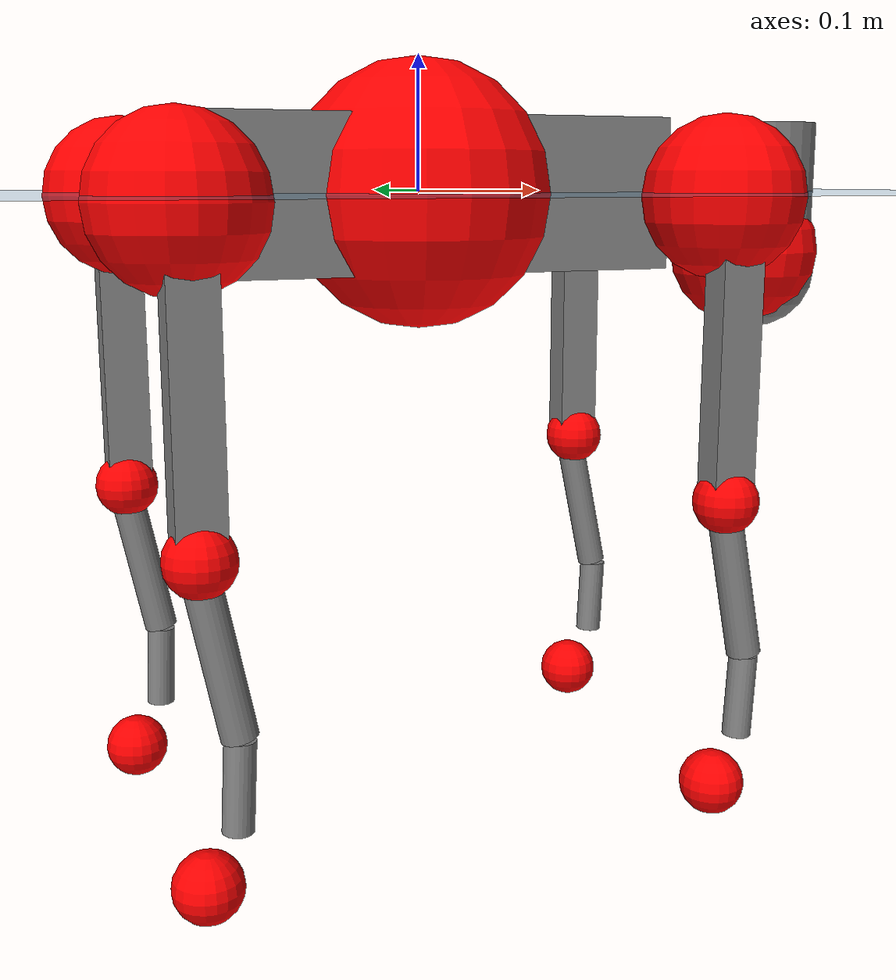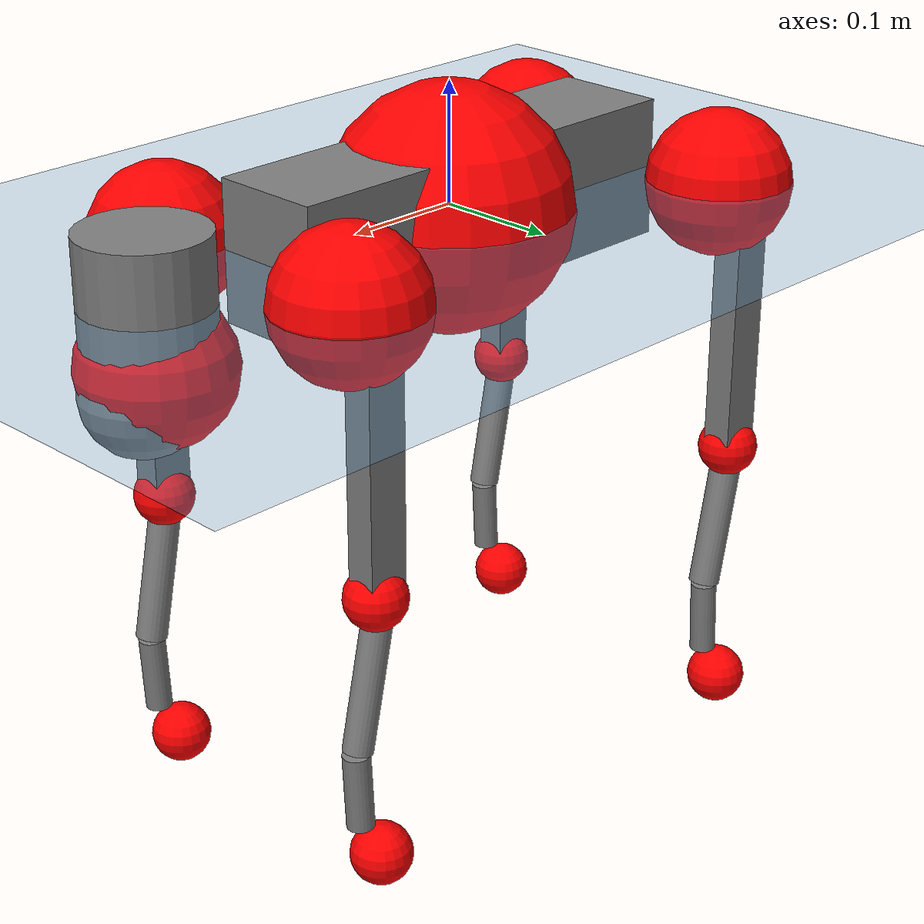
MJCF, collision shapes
<mujoco model="go2">
  <compiler angle="radian" assetdir="assets" balanceinertia="true" inertiafromgeom="false"/>

  <option timestep="0.005" density="1.2" viscosity="2e-05"/>

  <size nkey="1"/>

  <visual>
    <quality shadowsize="8192"/>
    <map shadowclip="0.5"/>
  </visual>

  <default>
    <default class="/">
      <geom contype="0" conaffinity="0" group="1" solref="-1000 -80"/>
      <site size="0.01 0.005 0.005" group="5"/>
      <general forcelimited="true" biastype="affine" gainprm="20" biasprm="0 -20 -0.5"/>
      <default class="go2">
        <joint armature="0.01" damping="0.01" frictionloss="0.2"/>
        <geom condim="1" margin="0.001"/>
        <default class="visual">
          <geom type="mesh" group="2"/>
        </default>
        <default class="collision">
          <geom group="3"/>
          <default class="foot">
            <geom size="0.022 0 0" condim="6" priority="1" friction="0.8 0.02 0.01" solimp="0.015 1 0.022"/>
          </default>
        </default>
        <default class="reward_collision_sphere">
          <geom group="5" rgba="1 0 0 1"/>
        </default>
      </default>
    </default>
  </default>

  <asset>
    <texture type="skybox" colorspace="auto" name="//unnamed_texture_0" builtin="gradient" rgb1="0.95 0.95 0.95" rgb2="0.95 0.95 0.95" width="100" height="600"/>
    <texture type="2d" colorspace="auto" name="texplane" builtin="checker" rgb1="0.345 0.575 0.748" rgb2="0.345 0.575 0.748" markrgb="1 1 1" width="512" height="512"/>
    <material name="MatPlane" class="/" texture="texplane" texuniform="true" texrepeat="2 2" specular="0.9"/>
    <material name="metal" class="/" rgba="0.9 0.95 0.95 1"/>
    <material name="black" class="/" rgba="0 0 0 1"/>
    <material name="white" class="/"/>
    <material name="gray" class="/" rgba="0.671705 0.692426 0.77427 1"/>
    <mesh name="base_0" class="/" file="base_0.obj"/>
    <mesh name="base_1" class="/" file="base_1.obj"/>
    <mesh name="base_2" class="/" file="base_2.obj"/>
    <mesh name="base_3" class="/" file="base_3.obj"/>
    <mesh name="base_4" class="/" file="base_4.obj"/>
    <mesh name="hip_0" class="/" file="hip_0.obj"/>
    <mesh name="hip_1" class="/" file="hip_1.obj"/>
    <mesh name="thigh_0" class="/" file="thigh_0.obj"/>
    <mesh name="thigh_1" class="/" file="thigh_1.obj"/>
    <mesh name="thigh_mirror_0" class="/" file="thigh_mirror_0.obj"/>
    <mesh name="thigh_mirror_1" class="/" file="thigh_mirror_1.obj"/>
    <mesh name="calf_0" class="/" file="calf_0.obj"/>
    <mesh name="calf_1" class="/" file="calf_1.obj"/>
    <mesh name="calf_mirror_0" class="/" file="calf_mirror_0.obj"/>
    <mesh name="calf_mirror_1" class="/" file="calf_mirror_1.obj"/>
    <mesh name="foot" class="/" file="foot.obj"/>
  </asset>

  <worldbody>
    <geom name="floor" class="/" size="100 100 0.125" type="plane" group="0" material="MatPlane"/>
    <light name="toplight_shadow" class="/" pos="0 0 5" dir="0.0990148 0.0990148 -0.990148" type="directional" ambient="0.04 0.04 0.04" diffuse="0.55 0.55 0.55" specular="0.12 0.12 0.12"/>
    <light name="toplight_fill" class="/" pos="0 0 5" dir="0.0990148 0.0990148 -0.990148" type="directional" castshadow="false" ambient="0.04 0.04 0.04" diffuse="0.3 0.3 0.3" specular="0.08 0.08 0.08"/>
    <body name="trunk" childclass="go2" pos="-0.000456574 -0.000489599 -0.00222822" quat="1 3.40345e-05 1.05754e-05 -4.13493e-05">
      <inertial pos="0.0203742 -0.000927862 -0.00304766" quat="-0.00362434 0.716563 -0.0129641 0.697392" mass="7.31753" diaginertia="0.144743 0.0621987 0.0350095"/>
      <joint name="//unnamed_joint_0" type="free" armature="0" damping="0" frictionloss="0"/>
      <geom name="//unnamed_geom_1" class="visual" material="black" mesh="base_0"/>
      <geom name="//unnamed_geom_2" class="visual" material="black" mesh="base_1"/>
      <geom name="//unnamed_geom_3" class="visual" material="black" mesh="base_2"/>
      <geom name="//unnamed_geom_4" class="visual" material="white" mesh="base_3"/>
      <geom name="//unnamed_geom_5" class="visual" material="gray" mesh="base_4"/>
      <geom name="trunk_1" class="collision" size="0.190229 0.0472792 0.0576453" type="box"/>
      <geom name="trunk_2" class="collision" size="0.050566 0.0455094" pos="0.299913 0 0.0107102" type="cylinder"/>
      <geom name="trunk_3" class="collision" size="0.0475321" pos="0.308332 0 -0.064261"/>
      <geom name="//unnamed_geom_9" class="reward_collision_sphere" size="0.101132"/>
      <geom name="//unnamed_geom_10" class="reward_collision_sphere" size="0.0606792" pos="0.294652 0 -0.0481957"/>
      <site name="imu" pos="-0.0234759 -0.00169162 0.0494508" size="0.0101132"/>
      <camera name="track" pos="0 -1.82123 0" quat="0.707107 0.707107 0 0" mode="trackcom"/>
      <camera name="ego_camera" pos="0.328326 0 0.0481957" quat="-0.5 -0.5 0.5 0.5"/>
      <body name="FL_hip" pos="0.203526 0.04108 0.00296685" quat="0.999999 -0.000746347 -6.59965e-05 0.00111207">
        <inertial pos="-0.00503424 -0.000535791 0.000496216" quat="0.489149 0.507848 0.500748 0.502071" mass="0.705813" diaginertia="0.00115211 0.00038038 0.000705163"/>
        <joint name="FL_hip_joint" pos="0 0 0" axis="0.999978 0.00580546 -0.00312532" range="-1.03564 1.1044" armature="0.010102" damping="0.018398" frictionloss="0.192682"/>
        <geom name="//unnamed_geom_11" class="visual" material="metal" mesh="hip_0"/>
        <geom name="//unnamed_geom_12" class="visual" material="gray" mesh="hip_1"/>
        <geom name="//unnamed_geom_13" class="collision" size="0.0465207 0.0202264" pos="0 0.0728494 0" quat="0.707107 0.707107 0 0" type="cylinder"/>
        <geom name="//unnamed_geom_14" class="reward_collision_sphere" size="0.0606792" pos="0 0.0637432 0"/>
        <body name="FL_thigh" pos="-0.00126799 0.0858794 0.00262728" quat="1 0.000227261 -4.70843e-05 -0.000485359">
          <inertial pos="-0.00132353 -0.0206809 -0.0344558" quat="0.828323 0.0858792 -0.0101609 0.553537" mass="1.21783" diaginertia="0.00755927 0.00361842 0.00121235"/>
          <joint name="FL_thigh_joint" pos="0 0 0" axis="0.00866661 0.999959 0.00274947" stiffness="0.00770706" range="-1.60512 3.52806" armature="0.0104741" damping="0" frictionloss="0.194027"/>
          <geom name="//unnamed_geom_15" class="visual" material="metal" mesh="thigh_0"/>
          <geom name="//unnamed_geom_16" class="visual" material="gray" mesh="thigh_1"/>
          <geom name="//unnamed_geom_17" class="collision" size="0.107706 0.0123887 0.0171924" pos="0 0 -0.114063" quat="0.707107 0 0.707107 0" type="box"/>
          <body name="FL_calf" pos="0.00147793 -0.000721589 -0.227648" quat="1 0.000272097 -0.000655063 0.000464704">
            <inertial pos="0.00488315 -5.87546e-05 -0.153048" quat="0.708206 0.00318219 -0.0130619 0.705878" mass="0.244064" diaginertia="0.00185404 0.000915932 7.10161e-05"/>
            <joint name="FL_calf_joint" pos="0 0 0" axis="0.0356718 0.999107 -0.0226613" range="-2.77181 -0.783897" armature="0.0115003" damping="0.00685664" frictionloss="0.227681"/>
            <geom name="//unnamed_geom_18" class="visual" material="gray" mesh="calf_0"/>
            <geom name="//unnamed_geom_19" class="visual" material="black" mesh="calf_1"/>
            <geom name="FL_calf0" class="collision" size="0.0121358 0.0606792" pos="0.00841862 0 -0.064261" quat="0.994493 0 -0.104807 0" type="cylinder"/>
            <geom name="//unnamed_geom_21" class="collision" size="0.0111245 0.0328679" pos="0.0210466 0 -0.15851" quat="0.999688 0 0.0249974 0" type="cylinder"/>
            <geom name="//unnamed_geom_22" class="visual" pos="0 0 -0.228126" quat="1 0 0 0" material="black" mesh="foot"/>
            <geom name="FL_foot" class="foot" size="0.0152014" pos="-0.00210466 0 -0.228126"/>
            <geom name="//unnamed_geom_24" class="reward_collision_sphere" size="0.025283"/>
            <geom name="//unnamed_geom_25" class="reward_collision_sphere" size="0.025283" pos="-0.00210466 0 -0.228126"/>
            <site name="FL_foot" class="foot" pos="-0.00210466 0 -0.228126" size="0.0101132"/>
          </body>
        </body>
      </body>
      <body name="FR_hip" pos="0.201482 -0.0422733 -0.00175275" quat="1 -2.26794e-06 -4.14027e-05 -1.85208e-05">
        <inertial pos="-0.00469329 -0.00136862 -0.00104803" quat="0.499091 0.503567 0.501395 0.495915" mass="0.707371" diaginertia="0.0011363 0.000398019 0.000699132"/>
        <joint name="FR_hip_joint" pos="0 0 0" axis="0.999914 -0.00774016 0.0106092" range="-1.06078 1.05783" armature="0.00970381" damping="0" frictionloss="0.194775"/>
        <geom name="//unnamed_geom_26" class="visual" pos="0 -1.39733e-09 -5.99343e-08" quat="4.63268e-05 1 0 0" material="metal" mesh="hip_0"/>
        <geom name="//unnamed_geom_27" class="visual" pos="0 -2.26524e-09 1.48241e-07" quat="4.63268e-05 1 0 0" material="gray" mesh="hip_1"/>
        <geom name="//unnamed_geom_28" class="collision" size="0.0465207 0.0202264" pos="0 -0.0728494 0" quat="0.707107 0.707107 0 0" type="cylinder"/>
        <geom name="//unnamed_geom_29" class="reward_collision_sphere" size="0.0606792" pos="0 -0.0637432 0"/>
        <body name="FR_thigh" pos="-0.00262289 -0.0866356 -0.00190741" quat="1 0.00014574 0.000407726 0.000366025">
          <inertial pos="-0.00394655 0.0208165 -0.0345131" quat="0.55583 -0.0198896 0.0854632 0.826652" mass="1.1631" diaginertia="0.0074665 0.00368629 0.00125256"/>
          <joint name="FR_thigh_joint" pos="0 0 0" axis="-0.0030223 -0.999991 -0.00299392" range="-3.50208 1.61609" armature="0.0101965" damping="0" frictionloss="0.18746"/>
          <geom name="//unnamed_geom_30" class="visual" material="metal" mesh="thigh_mirror_0"/>
          <geom name="//unnamed_geom_31" class="visual" material="gray" mesh="thigh_mirror_1"/>
          <geom name="//unnamed_geom_32" class="collision" size="0.107706 0.0123887 0.0171924" pos="0 0 -0.114063" quat="0.707107 0 0.707107 0" type="box"/>
          <body name="FR_calf" pos="0.000618211 2.16419e-05 -0.225139" quat="1 8.53879e-05 0.000211082 -0.000265401">
            <inertial pos="0.0066018 0.00174923 -0.15118" quat="0.703729 0.00799074 0.00621042 0.710397" mass="0.246927" diaginertia="0.00192627 0.000894944 7.37458e-05"/>
            <joint name="FR_calf_joint" pos="0 0 0" axis="4.34004e-05 -0.999974 0.00715564" range="0.784293 2.77059" armature="0.00894408" damping="0.0118087" frictionloss="0.204677"/>
            <geom name="//unnamed_geom_33" class="visual" material="gray" mesh="calf_mirror_0"/>
            <geom name="//unnamed_geom_34" class="visual" material="black" mesh="calf_mirror_1"/>
            <geom name="FR_calf0" class="collision" size="0.0131472 0.0606792" pos="0.0105233 0 -0.064261" quat="0.995004 0 -0.0998334 0" type="cylinder"/>
            <geom name="//unnamed_geom_36" class="collision" size="0.0111245 0.0328679" pos="0.0210466 0 -0.15851" quat="0.999688 0 0.0249974 0" type="cylinder"/>
            <geom name="//unnamed_geom_37" class="visual" pos="0 0 -0.228126" quat="1 0 0 0" material="black" mesh="foot"/>
            <geom name="FR_foot" class="foot" size="0.0236901" pos="-0.00210466 0 -0.228126"/>
            <geom name="//unnamed_geom_39" class="reward_collision_sphere" size="0.025283"/>
            <geom name="//unnamed_geom_40" class="reward_collision_sphere" size="0.025283" pos="-0.00210466 0 -0.228126"/>
            <site name="FR_foot" class="foot" pos="-0.00210466 0 -0.228126" size="0.0101132"/>
          </body>
        </body>
      </body>
      <body name="RL_hip" pos="-0.202986 0.0449905 -0.00153995" quat="0.999999 -0.000669629 -0.000643961 -0.00069071">
        <inertial pos="0.00838166 0.00235425 -0.000981083" quat="0.501849 0.493265 0.494397 0.510304" mass="0.707749" diaginertia="0.00108938 0.000366299 0.000659734"/>
        <joint name="RL_hip_joint" pos="0 0 0" axis="-0.999989 0.000483663 0.00474544" range="-0.994845 1.07538" armature="0.00975052" damping="0" frictionloss="0.212066"/>
        <geom name="//unnamed_geom_41" class="visual" pos="1.62802e-10 0 3.1913e-08" quat="4.63268e-05 0 1 0" material="metal" mesh="hip_0"/>
        <geom name="//unnamed_geom_42" class="visual" pos="2.63922e-10 0 2.83023e-08" quat="4.63268e-05 0 1 0" material="gray" mesh="hip_1"/>
        <geom name="//unnamed_geom_43" class="collision" size="0.0465207 0.0202264" pos="0 0.0728494 0" quat="0.707107 0.707107 0 0" type="cylinder"/>
        <geom name="//unnamed_geom_44" class="reward_collision_sphere" size="0.0606792" pos="0 0.0637432 0"/>
        <body name="RL_thigh" pos="-0.00249962 0.0877536 -0.00237191" quat="1 -3.59855e-05 5.85241e-05 9.76703e-06">
          <inertial pos="-0.00339151 -0.0186555 -0.0354878" quat="0.829952 0.0860851 -0.0175032 0.550874" mass="1.19459" diaginertia="0.00767355 0.00353617 0.00127202"/>
          <joint name="RL_thigh_joint" pos="0 0 0" axis="-0.000193137 1 0.00048774" stiffness="0.0100443" range="-0.535404 4.53932" armature="0.00870552" damping="0" frictionloss="0.228071"/>
          <geom name="//unnamed_geom_45" class="visual" material="metal" mesh="thigh_0"/>
          <geom name="//unnamed_geom_46" class="visual" material="gray" mesh="thigh_1"/>
          <geom name="//unnamed_geom_47" class="collision" size="0.107706 0.0123887 0.0171924" pos="0 0 -0.114063" quat="0.707107 0 0.707107 0" type="box"/>
          <body name="RL_calf" pos="-0.00245064 -0.00207112 -0.231053" quat="0.999999 0.000574524 0.000642441 0.00081687">
            <inertial pos="0.00661109 -0.000435488 -0.15038" quat="0.711537 0.000172444 -0.010963 0.702563" mass="0.249695" diaginertia="0.00190415 0.000917139 7.55939e-05"/>
            <joint name="RL_calf_joint" pos="0 0 0" axis="-0.00615347 0.99998 0.00161555" range="-2.73056 -0.831384" armature="0.00928638" damping="0.00199974" frictionloss="0.226825"/>
            <geom name="//unnamed_geom_48" class="visual" material="gray" mesh="calf_0"/>
            <geom name="//unnamed_geom_49" class="visual" material="black" mesh="calf_1"/>
            <geom name="RL_calf0" class="collision" size="0.0131472 0.0606792" pos="0.0105233 0 -0.064261" quat="0.995004 0 -0.0998334 0" type="cylinder"/>
            <geom name="//unnamed_geom_51" class="collision" size="0.0111245 0.0328679" pos="0.0210466 0 -0.15851" quat="0.999688 0 0.0249974 0" type="cylinder"/>
            <geom name="//unnamed_geom_52" class="visual" pos="0 0 -0.228126" quat="1 0 0 0" material="black" mesh="foot"/>
            <geom name="RL_foot" class="foot" size="0.0176803" pos="-0.00210466 0 -0.228126"/>
            <geom name="//unnamed_geom_54" class="reward_collision_sphere" size="0.025283"/>
            <geom name="//unnamed_geom_55" class="reward_collision_sphere" size="0.025283" pos="-0.00210466 0 -0.228126"/>
            <site name="RL_foot" class="foot" pos="-0.00210466 0 -0.228126" size="0.0101132"/>
          </body>
        </body>
      </body>
      <body name="RR_hip" pos="-0.204283 -0.043179 -0.00319911" quat="1 -2.52891e-06 0.000560101 0.000682014">
        <inertial pos="0.00536887 -0.00108618 0.000942422" quat="0.506131 0.499496 0.494917 0.499391" mass="0.674391" diaginertia="0.00110026 0.000361462 0.00065503"/>
        <joint name="RR_hip_joint" pos="0 0 0" axis="-0.999996 0.0005964 -0.00262588" range="-1.07084 1.03507" armature="0.00999144" damping="0.00546785" frictionloss="0.20541"/>
        <geom name="//unnamed_geom_56" class="visual" pos="-1.67709e-10 -1.39733e-09 9.18474e-08" quat="2.14617e-09 4.63268e-05 4.63268e-05 -1" material="metal" mesh="hip_0"/>
        <geom name="//unnamed_geom_57" class="visual" pos="-2.51788e-10 -2.26524e-09 -1.19938e-07" quat="2.14617e-09 4.63268e-05 4.63268e-05 -1" material="gray" mesh="hip_1"/>
        <geom name="//unnamed_geom_58" class="collision" size="0.0465207 0.0202264" pos="0 -0.0728494 0" quat="0.707107 0.707107 0 0" type="cylinder"/>
        <geom name="//unnamed_geom_59" class="reward_collision_sphere" size="0.0606792" pos="0 -0.0637432 0"/>
        <body name="RR_thigh" pos="-0.000359026 -0.0899706 -0.00031016" quat="1 0.000403109 -0.00037149 -1.84445e-05">
          <inertial pos="-0.00171612 0.0190731 -0.0340596" quat="0.552313 -0.0210919 0.0846708 0.829057" mass="1.21335" diaginertia="0.00767522 0.00366237 0.00127827"/>
          <joint name="RR_thigh_joint" pos="0 0 0" axis="-0.00318212 -0.999953 -0.00918784" stiffness="0.00419148" range="-4.55501 0.533674" armature="0.00872879" damping="0" frictionloss="0.202688"/>
          <geom name="//unnamed_geom_60" class="visual" material="metal" mesh="thigh_mirror_0"/>
          <geom name="//unnamed_geom_61" class="visual" material="gray" mesh="thigh_mirror_1"/>
          <geom name="//unnamed_geom_62" class="collision" size="0.107706 0.0123887 0.0171924" pos="0 0 -0.114063" quat="0.707107 0 0.707107 0" type="box"/>
          <body name="RR_calf" pos="-0.000202792 -0.00255644 -0.22613" quat="0.999999 0.000778288 0.00090328 0.000582206">
            <inertial pos="0.00374565 0.000896761 -0.152517" quat="0.699251 -0.00444551 0.00314072 0.714856" mass="0.247681" diaginertia="0.0018433 0.000924831 7.33797e-05"/>
            <joint name="RR_calf_joint" pos="0 0 0" axis="0.00151466 -0.999993 -0.00345462" stiffness="0.0051364" range="0.818374 2.68194" armature="0.0102664" damping="0.0265062" frictionloss="0.203134"/>
            <geom name="//unnamed_geom_63" class="visual" material="gray" mesh="calf_mirror_0"/>
            <geom name="//unnamed_geom_64" class="visual" material="black" mesh="calf_mirror_1"/>
            <geom name="RR_calf0" class="collision" size="0.0131472 0.0606792" pos="0.0105233 0 -0.064261" quat="0.995004 0 -0.0998334 0" type="cylinder"/>
            <geom name="//unnamed_geom_66" class="collision" size="0.0111245 0.0328679" pos="0.0210466 0 -0.15851" quat="0.999688 0 0.0249974 0" type="cylinder"/>
            <geom name="//unnamed_geom_67" class="visual" pos="0 0 -0.228126" quat="1 0 0 0" material="black" mesh="foot"/>
            <geom name="RR_foot" class="foot" size="0.0202714" pos="-0.00210466 0 -0.228126"/>
            <geom name="//unnamed_geom_69" class="reward_collision_sphere" size="0.025283"/>
            <geom name="//unnamed_geom_70" class="reward_collision_sphere" size="0.025283" pos="-0.00210466 0 -0.228126"/>
            <site name="RR_foot" class="foot" pos="-0.00210466 0 -0.228126" size="0.0101132"/>
          </body>
        </body>
      </body>
    </body>
  </worldbody>

  <contact>
    <pair class="/" geom1="floor" geom2="FL_foot" name="//unnamed_contact_0"/>
    <pair class="/" geom1="floor" geom2="FR_foot" name="//unnamed_contact_1"/>
    <pair class="/" geom1="floor" geom2="RL_foot" name="//unnamed_contact_2"/>
    <pair class="/" geom1="floor" geom2="RR_foot" name="//unnamed_contact_3"/>
  </contact>

  <actuator>
    <general name="FL_hip" class="/" joint="FL_hip_joint" forcerange="-23.2799 23.2799" gainprm="21.1112" biasprm="0 -21.1112 -0.479562"/>
    <general name="FL_thigh" class="/" joint="FL_thigh_joint" forcerange="-21.5391 21.5391" gainprm="21.1112" biasprm="0 -21.1112 -0.479562"/>
    <general name="FL_calf" class="/" joint="FL_calf_joint" forcerange="-42.6421 42.6421" gainprm="21.1112" biasprm="0 -21.1112 -0.479562"/>
    <general name="FR_hip" class="/" joint="FR_hip_joint" forcerange="-21.6278 21.6278" gainprm="21.1112" biasprm="0 -21.1112 -0.479562"/>
    <general name="FR_thigh" class="/" joint="FR_thigh_joint" forcerange="-26.4162 26.4162" gainprm="21.1112" biasprm="0 -21.1112 -0.479562"/>
    <general name="FR_calf" class="/" joint="FR_calf_joint" forcerange="-44.0901 44.0901" gainprm="21.1112" biasprm="0 -21.1112 -0.479562"/>
    <general name="RL_hip" class="/" joint="RL_hip_joint" forcerange="-24.062 24.062" gainprm="21.1112" biasprm="0 -21.1112 -0.479562"/>
    <general name="RL_thigh" class="/" joint="RL_thigh_joint" forcerange="-23.3152 23.3152" gainprm="21.1112" biasprm="0 -21.1112 -0.479562"/>
    <general name="RL_calf" class="/" joint="RL_calf_joint" forcerange="-43.0608 43.0608" gainprm="21.1112" biasprm="0 -21.1112 -0.479562"/>
    <general name="RR_hip" class="/" joint="RR_hip_joint" forcerange="-21.747 21.747" gainprm="21.1112" biasprm="0 -21.1112 -0.479562"/>
    <general name="RR_thigh" class="/" joint="RR_thigh_joint" forcerange="-24.0965 24.0965" gainprm="21.1112" biasprm="0 -21.1112 -0.479562"/>
    <general name="RR_calf" class="/" joint="RR_calf_joint" forcerange="-47.9753 47.9753" gainprm="21.1112" biasprm="0 -21.1112 -0.479562"/>
  </actuator>

  <sensor>
    <gyro site="imu" name="imu_angular_velocity"/>
    <velocimeter site="imu" name="imu_linear_velocity"/>
    <framelinvel objtype="site" objname="FL_foot" name="FL_foot_global_linear_velocity"/>
    <framelinvel objtype="site" objname="FR_foot" name="FR_foot_global_linear_velocity"/>
    <framelinvel objtype="site" objname="RL_foot" name="RL_foot_global_linear_velocity"/>
    <framelinvel objtype="site" objname="RR_foot" name="RR_foot_global_linear_velocity"/>
  </sensor>

  <keyframe>
    <key name="home" qpos="0 0 0.325 1 0 0 0 0.1 0.8 -1.5 -0.1 -0.8 1.5 -0.1 0.8 -1.5 0.1 -0.8 1.5"/>
  </keyframe>
</mujoco>
